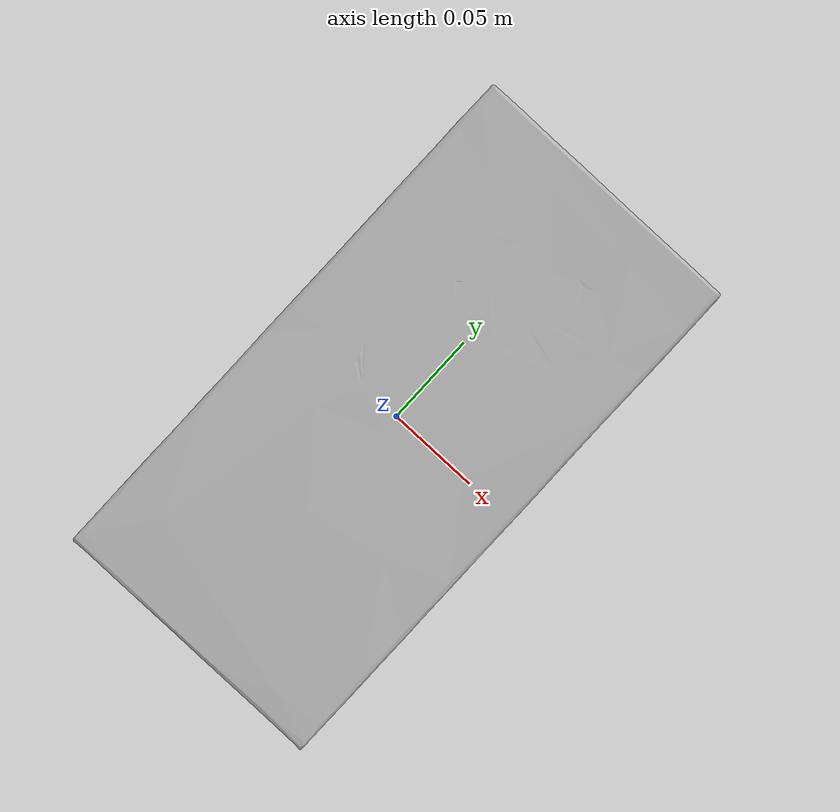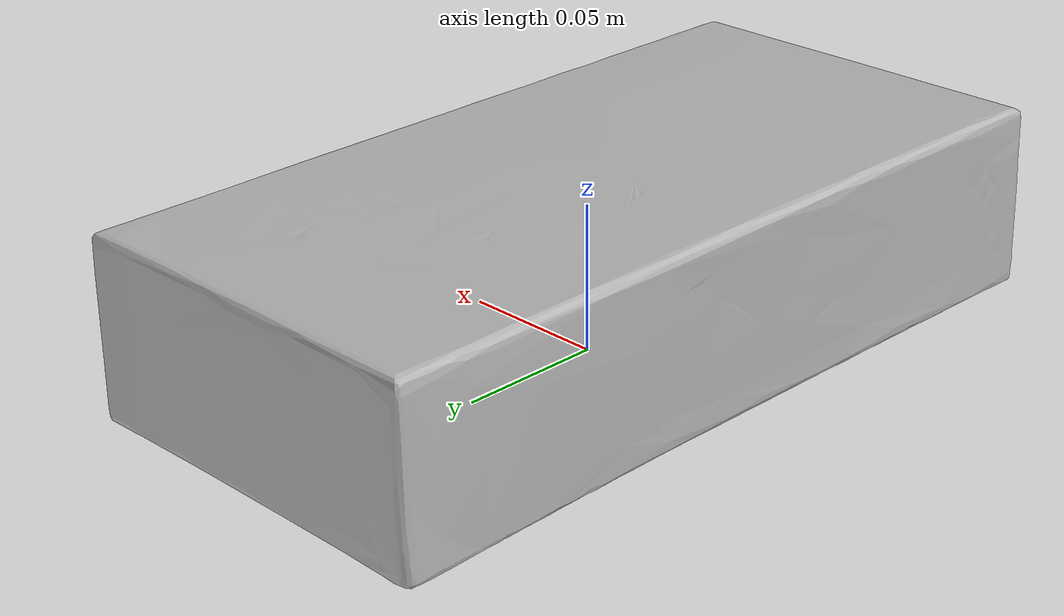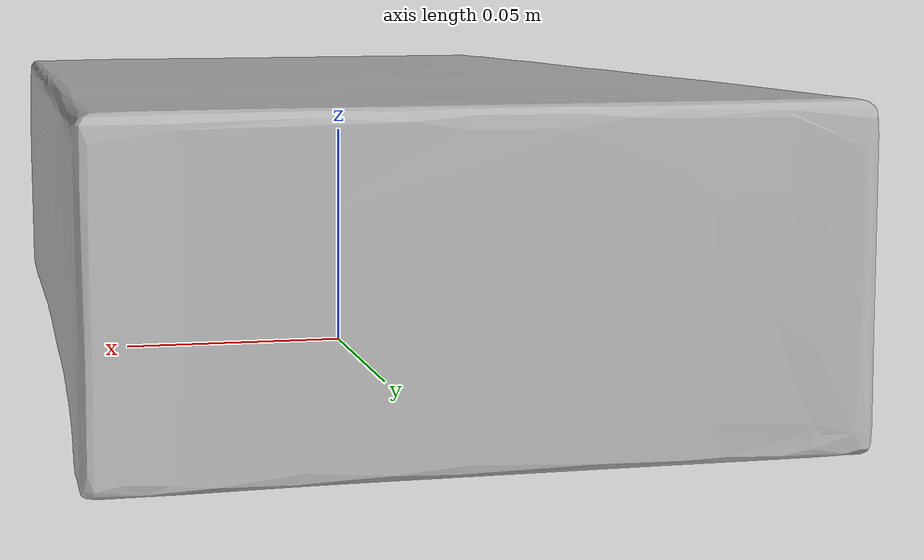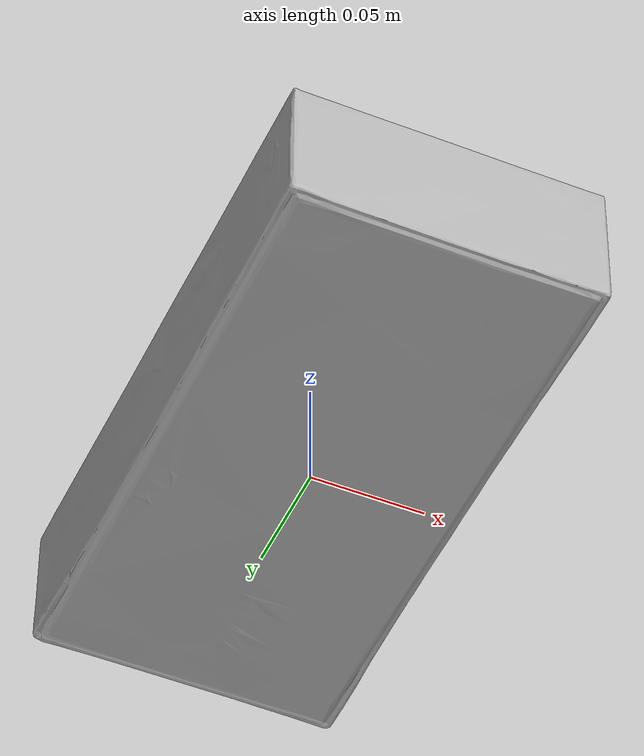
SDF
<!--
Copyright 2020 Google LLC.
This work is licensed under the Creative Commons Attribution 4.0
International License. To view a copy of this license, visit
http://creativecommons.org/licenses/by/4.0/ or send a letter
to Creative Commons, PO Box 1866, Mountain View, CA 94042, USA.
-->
<?xml version="1.0" ?>
<sdf version="1.6">
  <model name="Apples_to_Apples_Kids_Edition">
    <link name="link_0">
      <visual name="visual">
        <geometry>
          <mesh>
            <uri>meshes/model.obj</uri>
          </mesh>
        </geometry>
      </visual>
      <collision name="collision_0">
        <geometry>
          <mesh>
            <uri>meshes/model.obj</uri>
          </mesh>
        </geometry>
      </collision>
    </link>
  </model>
</sdf>
